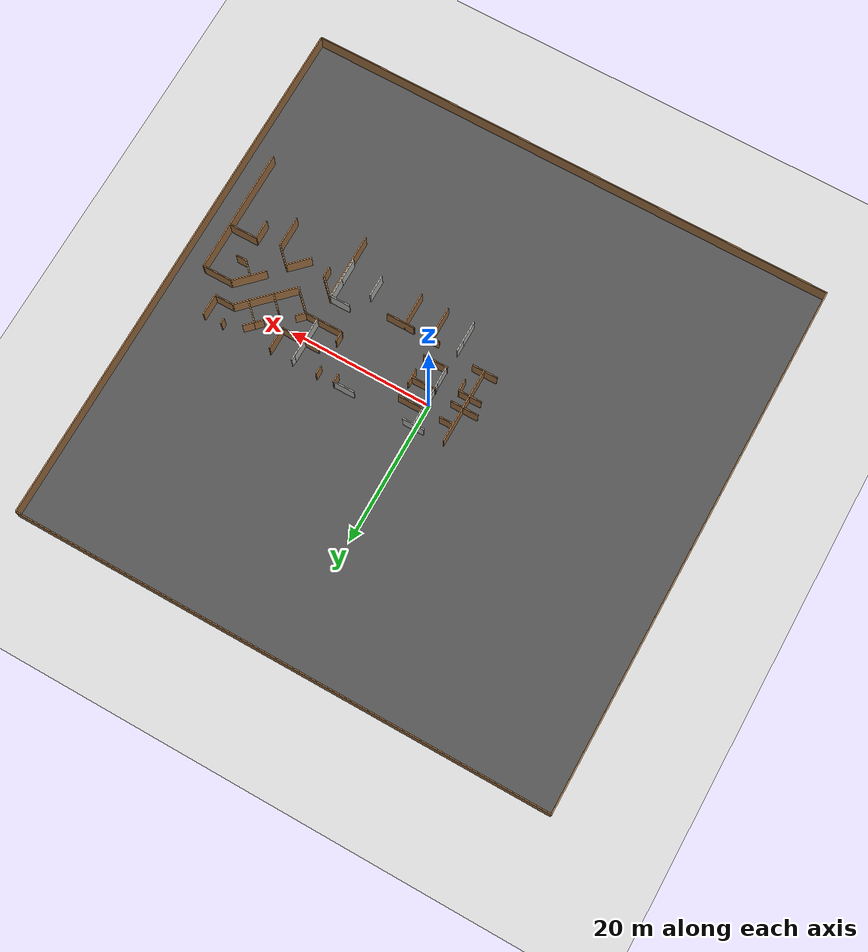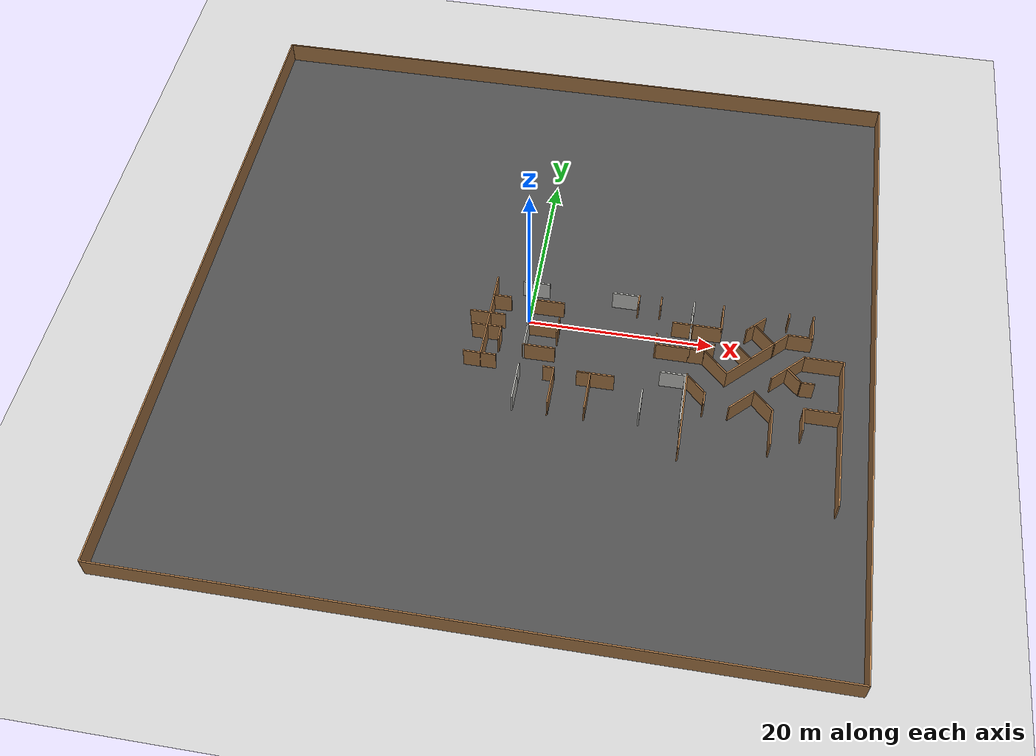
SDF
<sdf version="1.6">
 <world name="default">
  <model name="ground_plane">
   <static>1</static>
   <link name="link">
    <collision name="collision">
     <geometry><plane><normal>0 0 1</normal><size>100 100</size></plane></geometry>
     <surface><friction><ode><mu>100</mu><mu2>50</mu2></ode></friction></surface>
    </collision>
    <visual name="visual">
     <cast_shadows>0</cast_shadows>
     <geometry><plane><normal>0 0 1</normal><size>100 100</size></plane></geometry>
     <material>
      <script><uri>file://media/materials/scripts/gazebo.material</uri><name>Gazebo/Grey</name></script>
     </material>
    </visual>
   </link>
  </model>
  <model name="map_frame">
   <link name="Wall_0">
    <collision name="Wall_0_Collision">
     <geometry><box><size>74.05 0.15 2.5</size></box></geometry>
     <pose>0 0 1.25 0 -0 0</pose>
    </collision>
    <visual name="Wall_0_Visual">
     <pose>0 0 1.25 0 -0 0</pose>
     <geometry><box><size>74.05 0.15 2.5</size></box></geometry>
     <material>
      <script><uri>file://media/materials/scripts/gazebo.material</uri><name>Gazebo/Wood</name></script>
      <ambient>1 1 1 1</ambient>
     </material>
    </visual>
    <pose>0 37 0 0 -0 0</pose>
   </link>
   <link name="Wall_1">
    <collision name="Wall_1_Collision">
     <geometry><box><size>74.05 0.15 2.5</size></box></geometry>
     <pose>0 0 1.25 0 -0 0</pose>
    </collision>
    <visual name="Wall_1_Visual">
     <pose>0 0 1.25 0 -0 0</pose>
     <geometry><box><size>74.05 0.15 2.5</size></box></geometry>
     <material>
      <script><uri>file://media/materials/scripts/gazebo.material</uri><name>Gazebo/Wood</name></script>
      <ambient>1 1 1 1</ambient>
     </material>
    </visual>
    <pose>37 0 0 0 0 -1.5708</pose>
   </link>
   <link name="Wall_2">
    <collision name="Wall_2_Collision">
     <geometry><box><size>74.05 0.15 2.5</size></box></geometry>
     <pose>0 0 1.25 0 -0 0</pose>
    </collision>
    <visual name="Wall_2_Visual">
     <pose>0 0 1.25 0 -0 0</pose>
     <geometry><box><size>74.05 0.15 2.5</size></box></geometry>
     <material>
      <script><uri>file://media/materials/scripts/gazebo.material</uri><name>Gazebo/Wood</name></script>
      <ambient>1 1 1 1</ambient>
     </material>
    </visual>
    <pose>0 -37 0 0 -0 3.14159</pose>
   </link>
   <link name="Wall_3">
    <collision name="Wall_3_Collision">
     <geometry><box><size>74.05 0.15 2.5</size></box></geometry>
     <pose>0 0 1.25 0 -0 0</pose>
    </collision>
    <visual name="Wall_3_Visual">
     <pose>0 0 1.25 0 -0 0</pose>
     <geometry><box><size>74.05 0.15 2.5</size></box></geometry>
     <material>
      <script><uri>file://media/materials/scripts/gazebo.material</uri><name>Gazebo/Wood</name></script>
      <ambient>1 1 1 1</ambient>
     </material>
    </visual>
    <pose>-37 0 0 0 -0 1.5708</pose>
   </link>
   <static>1</static>
  </model>
  <model name="asphalt_plane">
   <static>1</static>
   <link name="link">
    <collision name="collision"><geometry><box><size>74 74 0.1</size></box></geometry></collision>
    <visual name="visual">
     <cast_shadows>0</cast_shadows>
     <geometry><box><size>74 74 0.1</size></box></geometry>
     <material>
      <script>
       <uri>model://asphalt_plane/materials/scripts</uri>
       <uri>model://asphalt_plane/materials/textures</uri>
       <name>vrc/asphalt</name>
      </script>
     </material>
    </visual>
   </link>
  </model>
  <model name="concrete_wall_6_clone_1">
   <pose>16.3445 -5.99981 0 0 -0 1.57079</pose>
   <link name="Wall_0">
    <collision name="Wall_0_Collision">
     <geometry><box><size>3 0.15 2.5</size></box></geometry>
     <pose>0 0 1.25 0 -0 0</pose>
    </collision>
    <visual name="Wall_0_Visual">
     <pose>0 0 1.25 0 -0 0</pose>
     <geometry><box><size>3 0.15 2.5</size></box></geometry>
     <material>
      <script><uri>file://media/materials/scripts/gazebo.material</uri><name>Gazebo/CeilingTiled</name></script>
      <ambient>1 1 1 1</ambient>
     </material>
     <meta><layer>0</layer></meta>
    </visual>
    <pose>0 0 0 0 -0 1.5708</pose>
   </link>
   <static>1</static>
  </model>
  <model name="concrete_wall_7">
   <pose>13.2693 -9.97942 0 0 -0 0</pose>
   <link name="Wall_0">
    <collision name="Wall_0_Collision">
     <geometry><box><size>3 0.15 2.5</size></box></geometry>
     <pose>0 0 1.25 0 -0 0</pose>
    </collision>
    <visual name="Wall_0_Visual">
     <pose>0 0 1.25 0 -0 0</pose>
     <geometry><box><size>3 0.15 2.5</size></box></geometry>
     <material>
      <script><uri>file://media/materials/scripts/gazebo.material</uri><name>Gazebo/CeilingTiled</name></script>
      <ambient>1 1 1 1</ambient>
     </material>
     <meta><layer>0</layer></meta>
    </visual>
    <pose>0 0 0 0 -0 1.5708</pose>
   </link>
   <static>1</static>
  </model>
  <model name="concrete_wall_8">
   <pose>17.5032 -10.1408 0 0 -0 0</pose>
   <link name="Wall_0">
    <collision name="Wall_0_Collision">
     <geometry><box><size>3 0.15 2.5</size></box></geometry>
     <pose>0 0 1.25 0 -0 0</pose>
    </collision>
    <visual name="Wall_0_Visual">
     <pose>0 0 1.25 0 -0 0</pose>
     <geometry><box><size>3 0.15 2.5</size></box></geometry>
     <material>
      <script><uri>file://media/materials/scripts/gazebo.material</uri><name>Gazebo/CeilingTiled</name></script>
      <ambient>1 1 1 1</ambient>
     </material>
     <meta><layer>0</layer></meta>
    </visual>
    <pose>0 0 0 0 -0 1.5708</pose>
   </link>
   <static>1</static>
  </model>
  <model name="concrete_wall_9">
   <pose>17.5144 -7.46989 0 0 -0 0</pose>
   <link name="Wall_0">
    <collision name="Wall_0_Collision">
     <geometry><box><size>3 0.15 2.5</size></box></geometry>
     <pose>0 0 1.25 0 -0 0</pose>
    </collision>
    <visual name="Wall_0_Visual">
     <pose>0 0 1.25 0 -0 0</pose>
     <geometry><box><size>3 0.15 2.5</size></box></geometry>
     <material>
      <script><uri>file://media/materials/scripts/gazebo.material</uri><name>Gazebo/CeilingTiled</name></script>
      <ambient>1 1 1 1</ambient>
     </material>
     <meta><layer>0</layer></meta>
    </visual>
    <pose>0 0 0 0 -0 1.5708</pose>
   </link>
   <static>1</static>
  </model>
  <model name="willowgarage_v1_1">
   <pose>-14.3408 -3.86286 0 0 -0 0</pose>
   <link name="Wall_203">
    <collision name="Wall_203_Collision">
     <geometry><box><size>1.25 0.15 2.5</size></box></geometry>
     <pose>0 0 1.25 0 -0 0</pose>
    </collision>
    <visual name="Wall_203_Visual">
     <pose>0 0 1.25 0 -0 0</pose>
     <geometry><box><size>1.25 0.15 2.5</size></box></geometry>
     <material>
      <script><uri>file://media/materials/scripts/gazebo.material</uri><name>Gazebo/Wood</name></script>
      <ambient>1 1 1 1</ambient>
     </material>
     <meta><layer>0</layer></meta>
    </visual>
    <pose>28.3156 7.16139 0 0 0 -1.5708</pose>
   </link>
   <link name="Wall_205">
    <collision name="Wall_205_Collision">
     <geometry><box><size>3.75 0.15 2.5</size></box></geometry>
     <pose>0 0 1.25 0 -0 0</pose>
    </collision>
    <visual name="Wall_205_Visual">
     <pose>0 0 1.25 0 -0 0</pose>
     <geometry><box><size>3.75 0.15 2.5</size></box></geometry>
     <material>
      <script><uri>file://media/materials/scripts/gazebo.material</uri><name>Gazebo/Wood</name></script>
      <ambient>1 1 1 1</ambient>
     </material>
     <meta><layer>0</layer></meta>
    </visual>
    <pose>30.1156 1.36139 0 0 -0 3.14159</pose>
   </link>
   <link name="Wall_206">
    <collision name="Wall_206_Collision">
     <geometry><box><size>1.5 0.15 2.5</size></box></geometry>
     <pose>0 0 1.25 0 -0 0</pose>
    </collision>
    <visual name="Wall_206_Visual">
     <pose>0 0 1.25 0 -0 0</pose>
     <geometry><box><size>1.5 0.15 2.5</size></box></geometry>
     <material>
      <script><uri>file://media/materials/scripts/gazebo.material</uri><name>Gazebo/Wood</name></script>
      <ambient>1 1 1 1</ambient>
     </material>
     <meta><layer>0</layer></meta>
    </visual>
    <pose>28.3156 2.03639 0 0 -0 1.5708</pose>
   </link>
   <link name="Wall_208">
    <collision name="Wall_208_Collision">
     <geometry><box><size>2.25 0.15 2.5</size></box></geometry>
     <pose>0 0 1.25 0 -0 0</pose>
    </collision>
    <visual name="Wall_208_Visual">
     <pose>0 0 1.25 0 -0 0</pose>
     <geometry><box><size>2.25 0.15 2.5</size></box></geometry>
     <material>
      <script><uri>file://media/materials/scripts/gazebo.material</uri><name>Gazebo/Wood</name></script>
      <ambient>1 1 1 1</ambient>
     </material>
     <meta><layer>0</layer></meta>
    </visual>
    <pose>30.9367 4.55145 0 0 -0 3.14159</pose>
   </link>
   <link name="Wall_210">
    <collision name="Wall_210_Collision">
     <geometry><box><size>1.25 0.15 2.5</size></box></geometry>
     <pose>0 0 1.25 0 -0 0</pose>
    </collision>
    <visual name="Wall_210_Visual">
     <pose>0 0 1.25 0 -0 0</pose>
     <geometry><box><size>1.25 0.15 2.5</size></box></geometry>
     <material>
      <script><uri>file://media/materials/scripts/gazebo.material</uri><name>Gazebo/Wood</name></script>
      <ambient>1 1 1 1</ambient>
     </material>
     <meta><layer>0</layer></meta>
    </visual>
    <pose>25.8955 7.01631 0 0 0 -1.5708</pose>
   </link>
   <link name="Wall_223">
    <collision name="Wall_223_Collision">
     <geometry><box><size>3.5 0.15 2.5</size></box></geometry>
     <pose>0 0 1.25 0 -0 0</pose>
    </collision>
    <visual name="Wall_223_Visual">
     <pose>0 0 1.25 0 -0 0</pose>
     <geometry><box><size>3.5 0.15 2.5</size></box></geometry>
     <material>
      <script><uri>file://media/materials/scripts/gazebo.material</uri><name>Gazebo/Wood</name></script>
      <ambient>1 1 1 1</ambient>
     </material>
     <meta><layer>0</layer></meta>
    </visual>
    <pose>16.1263 -0.986061 0 0 -0 0</pose>
   </link>
   <link name="Wall_225">
    <collision name="Wall_225_Collision">
     <geometry><box><size>3.5 0.15 2.5</size></box></geometry>
     <pose>0 0 1.25 0 -0 0</pose>
    </collision>
    <visual name="Wall_225_Visual">
     <pose>0 0 1.25 0 -0 0</pose>
     <geometry><box><size>3.5 0.15 2.5</size></box></geometry>
     <material>
      <script><uri>file://media/materials/scripts/gazebo.material</uri><name>Gazebo/Wood</name></script>
      <ambient>1 1 1 1</ambient>
     </material>
     <meta><layer>0</layer></meta>
    </visual>
    <pose>16.2246 5.15959 0 0 -0 0</pose>
   </link>
   <link name="Wall_227">
    <collision name="Wall_227_Collision">
     <geometry><box><size>3.5 0.15 2.5</size></box></geometry>
     <pose>0 0 1.25 0 -0 0</pose>
    </collision>
    <visual name="Wall_227_Visual">
     <pose>0 0 1.25 0 -0 0</pose>
     <geometry><box><size>3.5 0.15 2.5</size></box></geometry>
     <material>
      <script><uri>file://media/materials/scripts/gazebo.material</uri><name>Gazebo/Wood</name></script>
      <ambient>1 1 1 1</ambient>
     </material>
     <meta><layer>0</layer></meta>
    </visual>
    <pose>16.0641 2.21696 0 0 -0 0</pose>
   </link>
   <link name="Wall_228">
    <collision name="Wall_228_Collision">
     <geometry><box><size>1 0.15 2.5</size></box></geometry>
     <pose>0 0 1.25 0 -0 0</pose>
    </collision>
    <visual name="Wall_228_Visual">
     <pose>0 0 1.25 0 -0 0</pose>
     <geometry><box><size>1 0.15 2.5</size></box></geometry>
     <material>
      <script><uri>file://media/materials/scripts/gazebo.material</uri><name>Gazebo/Wood</name></script>
      <ambient>1 1 1 1</ambient>
     </material>
     <meta><layer>0</layer></meta>
    </visual>
    <pose>17.7391 2.64196 0 0 -0 1.5708</pose>
   </link>
   <link name="Wall_229">
    <collision name="Wall_229_Collision">
     <geometry><box><size>2 0.15 2.5</size></box></geometry>
     <pose>0 0 1.25 0 -0 0</pose>
    </collision>
    <visual name="Wall_229_Visual">
     <pose>0 0 1.25 0 -0 0</pose>
     <geometry><box><size>2 0.15 2.5</size></box></geometry>
     <material>
      <script><uri>file://media/materials/scripts/gazebo.material</uri><name>Gazebo/Wood</name></script>
      <ambient>1 1 1 1</ambient>
     </material>
     <meta><layer>0</layer></meta>
    </visual>
    <pose>17.7391 2.14196 0 0 0 -1.5708</pose>
   </link>
   <link name="Wall_24">
    <collision name="Wall_24_Collision">
     <geometry><box><size>9.25 0.15 2.5</size></box></geometry>
     <pose>0 0 1.25 0 -0 0</pose>
    </collision>
    <visual name="Wall_24_Visual">
     <pose>0 0 1.25 0 -0 0</pose>
     <geometry><box><size>9.25 0.15 2.5</size></box></geometry>
     <material>
      <script><uri>file://media/materials/scripts/gazebo.material</uri><name>Gazebo/Wood</name></script>
      <ambient>1 1 1 1</ambient>
     </material>
     <meta><layer>0</layer></meta>
    </visual>
    <pose>32.0092 -6.57054 0 0 0 -1.5708</pose>
   </link>
   <link name="Wall_311">
    <collision name="Wall_311_Collision">
     <geometry><box><size>3.5 0.15 2.5</size></box></geometry>
     <pose>0 0 1.25 0 -0 0</pose>
    </collision>
    <visual name="Wall_311_Visual">
     <pose>0 0 1.25 0 -0 0</pose>
     <geometry><box><size>3.5 0.15 2.5</size></box></geometry>
     <material>
      <script><uri>file://media/materials/scripts/gazebo.material</uri><name>Gazebo/Wood</name></script>
      <ambient>1 1 1 1</ambient>
     </material>
     <meta><layer>0</layer></meta>
    </visual>
    <pose>10.0901 -2.83065 0 0 -0 3.14159</pose>
   </link>
   <link name="Wall_313">
    <collision name="Wall_313_Collision">
     <geometry><box><size>10.5 0.15 2.5</size></box></geometry>
     <pose>0 0 1.25 0 -0 0</pose>
    </collision>
    <visual name="Wall_313_Visual">
     <pose>0 0 1.25 0 -0 0</pose>
     <geometry><box><size>10.5 0.15 2.5</size></box></geometry>
     <material>
      <script><uri>file://media/materials/scripts/gazebo.material</uri><name>Gazebo/Wood</name></script>
      <ambient>1 1 1 1</ambient>
     </material>
     <meta><layer>0</layer></meta>
    </visual>
    <pose>10.2019 2.34435 0 0 -0 1.5708</pose>
   </link>
   <link name="Wall_321">
    <collision name="Wall_321_Collision">
     <geometry><box><size>1.75 0.15 2.5</size></box></geometry>
     <pose>0 0 1.25 0 -0 0</pose>
    </collision>
    <visual name="Wall_321_Visual">
     <pose>0 0 1.25 0 -0 0</pose>
     <geometry><box><size>1.75 0.15 2.5</size></box></geometry>
     <material>
      <script><uri>file://media/materials/scripts/gazebo.material</uri><name>Gazebo/Wood</name></script>
      <ambient>1 1 1 1</ambient>
     </material>
     <meta><layer>0</layer></meta>
    </visual>
    <pose>11.7228 0.119011 0 0 -0 1.5708</pose>
   </link>
   <link name="Wall_322">
    <collision name="Wall_322_Collision">
     <geometry><box><size>3.25 0.15 2.5</size></box></geometry>
     <pose>0 0 1.25 0 -0 0</pose>
    </collision>
    <visual name="Wall_322_Visual">
     <pose>0 0 1.25 0 -0 0</pose>
     <geometry><box><size>3.25 0.15 2.5</size></box></geometry>
     <material>
      <script><uri>file://media/materials/scripts/gazebo.material</uri><name>Gazebo/Wood</name></script>
      <ambient>1 1 1 1</ambient>
     </material>
     <meta><layer>0</layer></meta>
    </visual>
    <pose>10.1728 0.919011 0 0 -0 3.14159</pose>
   </link>
   <link name="Wall_328">
    <collision name="Wall_328_Collision">
     <geometry><box><size>2.25 0.15 2.5</size></box></geometry>
     <pose>0 0 1.25 0 -0 0</pose>
    </collision>
    <visual name="Wall_328_Visual">
     <pose>0 0 1.25 0 -0 0</pose>
     <geometry><box><size>2.25 0.15 2.5</size></box></geometry>
     <material>
      <script><uri>file://media/materials/scripts/gazebo.material</uri><name>Gazebo/Wood</name></script>
      <ambient>1 1 1 1</ambient>
     </material>
     <meta><layer>0</layer></meta>
    </visual>
    <pose>9.18402 2.62221 0 0 -0 3.14159</pose>
   </link>
   <link name="Wall_330">
    <collision name="Wall_330_Collision">
     <geometry><box><size>2 0.15 2.5</size></box></geometry>
     <pose>0 0 1.25 0 -0 0</pose>
    </collision>
    <visual name="Wall_330_Visual">
     <pose>0 0 1.25 0 -0 0</pose>
     <geometry><box><size>2 0.15 2.5</size></box></geometry>
     <material>
      <script><uri>file://media/materials/scripts/gazebo.material</uri><name>Gazebo/Wood</name></script>
      <ambient>1 1 1 1</ambient>
     </material>
     <meta><layer>0</layer></meta>
    </visual>
    <pose>11.159 5.08798 0 0 -0 0</pose>
   </link>
   <link name="Wall_332">
    <collision name="Wall_332_Collision">
     <geometry><box><size>1.75 0.15 2.5</size></box></geometry>
     <pose>0 0 1.25 0 -0 0</pose>
    </collision>
    <visual name="Wall_332_Visual">
     <pose>0 0 1.25 0 -0 0</pose>
     <geometry><box><size>1.75 0.15 2.5</size></box></geometry>
     <material>
      <script><uri>file://media/materials/scripts/gazebo.material</uri><name>Gazebo/Wood</name></script>
      <ambient>1 1 1 1</ambient>
     </material>
     <meta><layer>0</layer></meta>
    </visual>
    <pose>11.034 2.62221 0 0 -0 0</pose>
   </link>
   <link name="Wall_343">
    <collision name="Wall_343_Collision">
     <geometry><box><size>17.5 0.15 2.5</size></box></geometry>
     <pose>0 0 1.25 0 -0 0</pose>
    </collision>
    <visual name="Wall_343_Visual">
     <pose>0 0 1.25 0 -0 0</pose>
     <geometry><box><size>17.5 0.15 2.5</size></box></geometry>
     <material>
      <script><uri>file://media/materials/scripts/gazebo.material</uri><name>Gazebo/Wood</name></script>
      <ambient>1 1 1 1</ambient>
     </material>
     <meta><layer>0</layer></meta>
    </visual>
    <pose>48.1101 -6.45706 0 0 0 -1.5708</pose>
   </link>
   <link name="Wall_350">
    <collision name="Wall_350_Collision">
     <geometry><box><size>4.25 0.15 2.5</size></box></geometry>
     <pose>0 0 1.25 0 -0 0</pose>
    </collision>
    <visual name="Wall_350_Visual">
     <pose>0 0 1.25 0 -0 0</pose>
     <geometry><box><size>4.25 0.15 2.5</size></box></geometry>
     <material>
      <script><uri>file://media/materials/scripts/gazebo.material</uri><name>Gazebo/Wood</name></script>
      <ambient>1 1 1 1</ambient>
     </material>
     <meta><layer>0</layer></meta>
    </visual>
    <pose>46.0601 2.21794 0 0 -0 3.14159</pose>
   </link>
   <link name="Wall_351">
    <collision name="Wall_351_Collision">
     <geometry><box><size>4.75 0.15 2.5</size></box></geometry>
     <pose>0 0 1.25 0 -0 0</pose>
    </collision>
    <visual name="Wall_351_Visual">
     <pose>0 0 1.25 0 -0 0</pose>
     <geometry><box><size>4.75 0.15 2.5</size></box></geometry>
     <material>
      <script><uri>file://media/materials/scripts/gazebo.material</uri><name>Gazebo/Wood</name></script>
      <ambient>1 1 1 1</ambient>
     </material>
     <meta><layer>0</layer></meta>
    </visual>
    <pose>42.3838 0.591594 0 0 0 -2.35619</pose>
   </link>
   <link name="Wall_354">
    <collision name="Wall_354_Collision">
     <geometry><box><size>3.5 0.15 2.5</size></box></geometry>
     <pose>0 0 1.25 0 -0 0</pose>
    </collision>
    <visual name="Wall_354_Visual">
     <pose>0 0 1.25 0 -0 0</pose>
     <geometry><box><size>3.5 0.15 2.5</size></box></geometry>
     <material>
      <script><uri>file://media/materials/scripts/gazebo.material</uri><name>Gazebo/Wood</name></script>
      <ambient>1 1 1 1</ambient>
     </material>
     <meta><layer>0</layer></meta>
    </visual>
    <pose>37.8607 -4.19295 0 0 0 -2.35619</pose>
   </link>
   <link name="Wall_35412">
    <collision name="Wall_35412_Collision">
     <geometry><box><size>3.5 0.15 2.5</size></box></geometry>
     <pose>0 0 1.25 0 -0 0</pose>
    </collision>
    <visual name="Wall_35412_Visual">
     <pose>0 0 1.25 0 -0 0</pose>
     <geometry><box><size>3.5 0.15 2.5</size></box></geometry>
     <material>
      <script><uri>file://media/materials/scripts/gazebo.material</uri><name>Gazebo/Wood</name></script>
      <ambient>1 1 1 1</ambient>
     </material>
     <meta><layer>0</layer></meta>
    </visual>
    <pose>37.8607 -4.19295 0 0 0 -2.35619</pose>
   </link>
   <link name="Wall_35411">
    <collision name="Wall_35411_Collision">
     <geometry><box><size>3.5 0.15 2.5</size></box></geometry>
     <pose>0 0 1.25 0 -0 0</pose>
    </collision>
    <visual name="Wall_35411_Visual">
     <pose>0 0 1.25 0 -0 0</pose>
     <geometry><box><size>3.5 0.15 2.5</size></box></geometry>
     <material>
      <script><uri>file://media/materials/scripts/gazebo.material</uri><name>Gazebo/Wood</name></script>
      <ambient>1 1 1 1</ambient>
     </material>
     <meta><layer>0</layer></meta>
    </visual>
    <pose>37.8607 -4.19295 0 0 0 -2.35619</pose>
   </link>
   <link name="Wall_361">
    <collision name="Wall_361_Collision">
     <geometry><box><size>2.25 0.15 2.5</size></box></geometry>
     <pose>0 0 1.25 0 -0 0</pose>
    </collision>
    <visual name="Wall_361_Visual">
     <pose>0 0 1.25 0 -0 0</pose>
     <geometry><box><size>2.25 0.15 2.5</size></box></geometry>
     <material>
      <script><uri>file://media/materials/scripts/gazebo.material</uri><name>Gazebo/Wood</name></script>
      <ambient>1 1 1 1</ambient>
     </material>
     <meta><layer>0</layer></meta>
    </visual>
    <pose>43.0424 -0.333442 0 0 0 -0.785398</pose>
   </link>
   <link name="Wall_362">
    <collision name="Wall_362_Collision">
     <geometry><box><size>1.5 0.15 2.5</size></box></geometry>
     <pose>0 0 1.25 0 -0 0</pose>
    </collision>
    <visual name="Wall_362_Visual">
     <pose>0 0 1.25 0 -0 0</pose>
     <geometry><box><size>1.5 0.15 2.5</size></box></geometry>
     <material>
      <script><uri>file://media/materials/scripts/gazebo.material</uri><name>Gazebo/Wood</name></script>
      <ambient>1 1 1 1</ambient>
     </material>
     <meta><layer>0</layer></meta>
    </visual>
    <pose>44.4599 -1.0759 0 0 -0 0</pose>
   </link>
   <link name="Wall_364">
    <collision name="Wall_364_Collision">
     <geometry><box><size>4 0.15 2.5</size></box></geometry>
     <pose>0 0 1.25 0 -0 0</pose>
    </collision>
    <visual name="Wall_364_Visual">
     <pose>0 0 1.25 0 -0 0</pose>
     <geometry><box><size>4 0.15 2.5</size></box></geometry>
     <material>
      <script><uri>file://media/materials/scripts/gazebo.material</uri><name>Gazebo/Wood</name></script>
      <ambient>1 1 1 1</ambient>
     </material>
     <meta><layer>0</layer></meta>
    </visual>
    <pose>46.1523 -4.31048 0 0 -0 3.14159</pose>
   </link>
   <link name="Wall_365">
    <collision name="Wall_365_Collision">
     <geometry><box><size>2.75 0.15 2.5</size></box></geometry>
     <pose>0 0 1.25 0 -0 0</pose>
    </collision>
    <visual name="Wall_365_Visual">
     <pose>0 0 1.25 0 -0 0</pose>
     <geometry><box><size>2.75 0.15 2.5</size></box></geometry>
     <material>
      <script><uri>file://media/materials/scripts/gazebo.material</uri><name>Gazebo/Wood</name></script>
      <ambient>1 1 1 1</ambient>
     </material>
     <meta><layer>0</layer></meta>
    </visual>
    <pose>44.2273 -5.61048 0 0 0 -1.5708</pose>
   </link>
   <link name="Wall_373">
    <collision name="Wall_373_Collision">
     <geometry><box><size>3 0.15 2.5</size></box></geometry>
     <pose>0 0 1.25 0 -0 0</pose>
    </collision>
    <visual name="Wall_373_Visual">
     <pose>0 0 1.25 0 -0 0</pose>
     <geometry><box><size>3 0.15 2.5</size></box></geometry>
     <material>
      <script><uri>file://media/materials/scripts/gazebo.material</uri><name>Gazebo/Wood</name></script>
      <ambient>1 1 1 1</ambient>
     </material>
     <meta><layer>0</layer></meta>
    </visual>
    <pose>40.0527 -4.01617 0 0 0 -0.785398</pose>
   </link>
   <link name="Wall_374">
    <collision name="Wall_374_Collision">
     <geometry><box><size>4.25 0.15 2.5</size></box></geometry>
     <pose>0 0 1.25 0 -0 0</pose>
    </collision>
    <visual name="Wall_374_Visual">
     <pose>0 0 1.25 0 -0 0</pose>
     <geometry><box><size>4.25 0.15 2.5</size></box></geometry>
     <material>
      <script><uri>file://media/materials/scripts/gazebo.material</uri><name>Gazebo/Wood</name></script>
      <ambient>1 1 1 1</ambient>
     </material>
     <meta><layer>0</layer></meta>
    </visual>
    <pose>41.0604 -7.0738 0 0 0 -1.5708</pose>
   </link>
   <link name="Wall_37312">
    <collision name="Wall_37312_Collision">
     <geometry><box><size>3 0.15 2.5</size></box></geometry>
     <pose>0 0 1.25 0 -0 0</pose>
    </collision>
    <visual name="Wall_37312_Visual">
     <pose>0 0 1.25 0 -0 0</pose>
     <geometry><box><size>3 0.15 2.5</size></box></geometry>
     <material>
      <script><uri>file://media/materials/scripts/gazebo.material</uri><name>Gazebo/Wood</name></script>
      <ambient>1 1 1 1</ambient>
     </material>
     <meta><layer>0</layer></meta>
    </visual>
    <pose>40.0527 -4.01617 0 0 0 -0.785398</pose>
   </link>
   <link name="Wall_37412">
    <collision name="Wall_37412_Collision">
     <geometry><box><size>4.25 0.15 2.5</size></box></geometry>
     <pose>0 0 1.25 0 -0 0</pose>
    </collision>
    <visual name="Wall_37412_Visual">
     <pose>0 0 1.25 0 -0 0</pose>
     <geometry><box><size>4.25 0.15 2.5</size></box></geometry>
     <material>
      <script><uri>file://media/materials/scripts/gazebo.material</uri><name>Gazebo/Wood</name></script>
      <ambient>1 1 1 1</ambient>
     </material>
     <meta><layer>0</layer></meta>
    </visual>
    <pose>41.0604 -7.0738 0 0 0 -1.5708</pose>
   </link>
   <link name="Wall_37311">
    <collision name="Wall_37311_Collision">
     <geometry><box><size>3 0.15 2.5</size></box></geometry>
     <pose>0 0 1.25 0 -0 0</pose>
    </collision>
    <visual name="Wall_37311_Visual">
     <pose>0 0 1.25 0 -0 0</pose>
     <geometry><box><size>3 0.15 2.5</size></box></geometry>
     <material>
      <script><uri>file://media/materials/scripts/gazebo.material</uri><name>Gazebo/Wood</name></script>
      <ambient>1 1 1 1</ambient>
     </material>
     <meta><layer>0</layer></meta>
    </visual>
    <pose>40.0527 -4.01617 0 0 0 -0.785398</pose>
   </link>
   <link name="Wall_37411">
    <collision name="Wall_37411_Collision">
     <geometry><box><size>4.25 0.15 2.5</size></box></geometry>
     <pose>0 0 1.25 0 -0 0</pose>
    </collision>
    <visual name="Wall_37411_Visual">
     <pose>0 0 1.25 0 -0 0</pose>
     <geometry><box><size>4.25 0.15 2.5</size></box></geometry>
     <material>
      <script><uri>file://media/materials/scripts/gazebo.material</uri><name>Gazebo/Wood</name></script>
      <ambient>1 1 1 1</ambient>
     </material>
     <meta><layer>0</layer></meta>
    </visual>
    <pose>41.0604 -7.0738 0 0 0 -1.5708</pose>
   </link>
   <link name="Wall_380">
    <collision name="Wall_380_Collision">
     <geometry><box><size>1.75 0.15 2.5</size></box></geometry>
     <pose>0 0 1.25 0 -0 0</pose>
    </collision>
    <visual name="Wall_380_Visual">
     <pose>0 0 1.25 0 -0 0</pose>
     <geometry><box><size>1.75 0.15 2.5</size></box></geometry>
     <material>
      <script><uri>file://media/materials/scripts/gazebo.material</uri><name>Gazebo/Wood</name></script>
      <ambient>1 1 1 1</ambient>
     </material>
     <meta><layer>0</layer></meta>
    </visual>
    <pose>32.7157 1.36139 0 0 -0 0</pose>
   </link>
   <link name="Wall_381">
    <collision name="Wall_381_Collision">
     <geometry><box><size>3.75 0.15 2.5</size></box></geometry>
     <pose>0 0 1.25 0 -0 0</pose>
    </collision>
    <visual name="Wall_381_Visual">
     <pose>0 0 1.25 0 -0 0</pose>
     <geometry><box><size>3.75 0.15 2.5</size></box></geometry>
     <material>
      <script><uri>file://media/materials/scripts/gazebo.material</uri><name>Gazebo/Wood</name></script>
      <ambient>1 1 1 1</ambient>
     </material>
     <meta><layer>0</layer></meta>
    </visual>
    <pose>34.7884 0.088597 0 0 0 -0.785398</pose>
   </link>
   <link name="Wall_382">
    <collision name="Wall_382_Collision">
     <geometry><box><size>8.75 0.15 2.5</size></box></geometry>
     <pose>0 0 1.25 0 -0 0</pose>
    </collision>
    <visual name="Wall_382_Visual">
     <pose>0 0 1.25 0 -0 0</pose>
     <geometry><box><size>8.75 0.15 2.5</size></box></geometry>
     <material>
      <script><uri>file://media/materials/scripts/gazebo.material</uri><name>Gazebo/Wood</name></script>
      <ambient>1 1 1 1</ambient>
     </material>
     <meta><layer>0</layer></meta>
    </visual>
    <pose>39.1018 1.85636 0 0 -0 0.785398</pose>
   </link>
   <link name="Wall_383">
    <collision name="Wall_383_Collision">
     <geometry><box><size>2.75 0.15 2.5</size></box></geometry>
     <pose>0 0 1.25 0 -0 0</pose>
    </collision>
    <visual name="Wall_383_Visual">
     <pose>0 0 1.25 0 -0 0</pose>
     <geometry><box><size>2.75 0.15 2.5</size></box></geometry>
     <material>
      <script><uri>file://media/materials/scripts/gazebo.material</uri><name>Gazebo/Wood</name></script>
      <ambient>1 1 1 1</ambient>
     </material>
     <meta><layer>0</layer></meta>
    </visual>
    <pose>43.4424 4.89692 0 0 -0 0</pose>
   </link>
   <link name="Wall_384">
    <collision name="Wall_384_Collision">
     <geometry><box><size>3 0.15 2.5</size></box></geometry>
     <pose>0 0 1.25 0 -0 0</pose>
    </collision>
    <visual name="Wall_384_Visual">
     <pose>0 0 1.25 0 -0 0</pose>
     <geometry><box><size>3 0.15 2.5</size></box></geometry>
     <material>
      <script><uri>file://media/materials/scripts/gazebo.material</uri><name>Gazebo/Wood</name></script>
      <ambient>1 1 1 1</ambient>
     </material>
     <meta><layer>0</layer></meta>
    </visual>
    <pose>44.7424 6.32192 0 0 -0 1.5708</pose>
   </link>
   <link name="Wall_386">
    <collision name="Wall_386_Collision">
     <geometry><box><size>0.75 0.15 2.5</size></box></geometry>
     <pose>0 0 1.25 0 -0 0</pose>
    </collision>
    <visual name="Wall_386_Visual">
     <pose>0 0 1.25 0 -0 0</pose>
     <geometry><box><size>0.75 0.15 2.5</size></box></geometry>
     <material>
      <script><uri>file://media/materials/scripts/gazebo.material</uri><name>Gazebo/Wood</name></script>
      <ambient>1 1 1 1</ambient>
     </material>
     <meta><layer>0</layer></meta>
    </visual>
    <pose>42.1424 7.44692 0 0 0 -1.5708</pose>
   </link>
   <link name="Wall_388">
    <collision name="Wall_388_Collision">
     <geometry><box><size>3 0.15 2.5</size></box></geometry>
     <pose>0 0 1.25 0 -0 0</pose>
    </collision>
    <visual name="Wall_388_Visual">
     <pose>0 0 1.25 0 -0 0</pose>
     <geometry><box><size>3 0.15 2.5</size></box></geometry>
     <material>
      <script><uri>file://media/materials/scripts/gazebo.material</uri><name>Gazebo/Wood</name></script>
      <ambient>1 1 1 1</ambient>
     </material>
     <meta><layer>0</layer></meta>
    </visual>
    <pose>33.0169 -3.02816 0 0 0 -0.785398</pose>
   </link>
   <link name="Wall_390">
    <collision name="Wall_390_Collision">
     <geometry><box><size>1.5 0.15 2.5</size></box></geometry>
     <pose>0 0 1.25 0 -0 0</pose>
    </collision>
    <visual name="Wall_390_Visual">
     <pose>0 0 1.25 0 -0 0</pose>
     <geometry><box><size>1.5 0.15 2.5</size></box></geometry>
     <material>
      <script><uri>file://media/materials/scripts/gazebo.material</uri><name>Gazebo/Wood</name></script>
      <ambient>1 1 1 1</ambient>
     </material>
     <meta><layer>0</layer></meta>
    </visual>
    <pose>34.0245 -4.71079 0 0 0 -1.5708</pose>
   </link>
   <link name="Wall_421">
    <collision name="Wall_421_Collision">
     <geometry><box><size>3.25 0.15 2.5</size></box></geometry>
     <pose>0 0 1.25 0 -0 0</pose>
    </collision>
    <visual name="Wall_421_Visual">
     <pose>0 0 1.25 0 -0 0</pose>
     <geometry><box><size>3.25 0.15 2.5</size></box></geometry>
     <material>
      <script><uri>file://media/materials/scripts/gazebo.material</uri><name>Gazebo/Wood</name></script>
      <ambient>1 1 1 1</ambient>
     </material>
     <meta><layer>0</layer></meta>
    </visual>
    <pose>33.5367 4.55145 0 0 -0 0</pose>
   </link>
   <link name="Wall_422">
    <collision name="Wall_422_Collision">
     <geometry><box><size>3.25 0.15 2.5</size></box></geometry>
     <pose>0 0 1.25 0 -0 0</pose>
    </collision>
    <visual name="Wall_422_Visual">
     <pose>0 0 1.25 0 -0 0</pose>
     <geometry><box><size>3.25 0.15 2.5</size></box></geometry>
     <material>
      <script><uri>file://media/materials/scripts/gazebo.material</uri><name>Gazebo/Wood</name></script>
      <ambient>1 1 1 1</ambient>
     </material>
     <meta><layer>0</layer></meta>
    </visual>
    <pose>35.0867 6.10145 0 0 -0 1.5708</pose>
   </link>
   <link name="Wall_425">
    <collision name="Wall_425_Collision">
     <geometry><box><size>2.5 0.15 2.5</size></box></geometry>
     <pose>0 0 1.25 0 -0 0</pose>
    </collision>
    <visual name="Wall_425_Visual">
     <pose>0 0 1.25 0 -0 0</pose>
     <geometry><box><size>2.5 0.15 2.5</size></box></geometry>
     <material>
      <script><uri>file://media/materials/scripts/gazebo.material</uri><name>Gazebo/Wood</name></script>
      <ambient>1 1 1 1</ambient>
     </material>
     <meta><layer>0</layer></meta>
    </visual>
    <pose>37.5395 1.98561 0 0 -0 2.35619</pose>
   </link>
   <link name="Wall_427">
    <collision name="Wall_427_Collision">
     <geometry><box><size>1.5 0.15 2.5</size></box></geometry>
     <pose>0 0 1.25 0 -0 0</pose>
    </collision>
    <visual name="Wall_427_Visual">
     <pose>0 0 1.25 0 -0 0</pose>
     <geometry><box><size>1.5 0.15 2.5</size></box></geometry>
     <material>
      <script><uri>file://media/materials/scripts/gazebo.material</uri><name>Gazebo/Wood</name></script>
      <ambient>1 1 1 1</ambient>
     </material>
     <meta><layer>0</layer></meta>
    </visual>
    <pose>33.9929 1.83869 0 0 -0 0.785398</pose>
   </link>
   <link name="Wall_431">
    <collision name="Wall_431_Collision">
     <geometry><box><size>3.25 0.15 2.5</size></box></geometry>
     <pose>0 0 1.25 0 -0 0</pose>
    </collision>
    <visual name="Wall_431_Visual">
     <pose>0 0 1.25 0 -0 0</pose>
     <geometry><box><size>3.25 0.15 2.5</size></box></geometry>
     <material>
      <script><uri>file://media/materials/scripts/gazebo.material</uri><name>Gazebo/Wood</name></script>
      <ambient>1 1 1 1</ambient>
     </material>
     <meta><layer>0</layer></meta>
    </visual>
    <pose>39.6341 4.52915 0 0 -0 2.35619</pose>
   </link>
   <link name="Wall_432">
    <collision name="Wall_432_Collision">
     <geometry><box><size>1.25 0.15 2.5</size></box></geometry>
     <pose>0 0 1.25 0 -0 0</pose>
    </collision>
    <visual name="Wall_432_Visual">
     <pose>0 0 1.25 0 -0 0</pose>
     <geometry><box><size>1.25 0.15 2.5</size></box></geometry>
     <material>
      <script><uri>file://media/materials/scripts/gazebo.material</uri><name>Gazebo/Wood</name></script>
      <ambient>1 1 1 1</ambient>
     </material>
     <meta><layer>0</layer></meta>
    </visual>
    <pose>38.1491 5.23626 0 0 0 -2.35619</pose>
   </link>
   <link name="Wall_433">
    <collision name="Wall_433_Collision">
     <geometry><box><size>2.75 0.15 2.5</size></box></geometry>
     <pose>0 0 1.25 0 -0 0</pose>
    </collision>
    <visual name="Wall_433_Visual">
     <pose>0 0 1.25 0 -0 0</pose>
     <geometry><box><size>2.75 0.15 2.5</size></box></geometry>
     <material>
      <script><uri>file://media/materials/scripts/gazebo.material</uri><name>Gazebo/Wood</name></script>
      <ambient>1 1 1 1</ambient>
     </material>
     <meta><layer>0</layer></meta>
    </visual>
    <pose>38.6795 5.76659 0 0 -0 0.785398</pose>
   </link>
   <link name="Wall_85">
    <collision name="Wall_85_Collision">
     <geometry><box><size>4.5 0.15 2.5</size></box></geometry>
     <pose>0 0 1.25 0 -0 0</pose>
    </collision>
    <visual name="Wall_85_Visual">
     <pose>0 0 1.25 0 -0 0</pose>
     <geometry><box><size>4.5 0.15 2.5</size></box></geometry>
     <material>
      <script><uri>file://media/materials/scripts/gazebo.material</uri><name>Gazebo/Wood</name></script>
      <ambient>1 1 1 1</ambient>
     </material>
     <meta><layer>0</layer></meta>
    </visual>
    <pose>18.1288 -5.66299 0 0 -0 1.5708</pose>
   </link>
   <link name="Wall_86">
    <collision name="Wall_86_Collision">
     <geometry><box><size>1.25 0.15 2.5</size></box></geometry>
     <pose>0 0 1.25 0 -0 0</pose>
    </collision>
    <visual name="Wall_86_Visual">
     <pose>0 0 1.25 0 -0 0</pose>
     <geometry><box><size>1.25 0.15 2.5</size></box></geometry>
     <material>
      <script><uri>file://media/materials/scripts/gazebo.material</uri><name>Gazebo/Wood</name></script>
      <ambient>1 1 1 1</ambient>
     </material>
     <meta><layer>0</layer></meta>
    </visual>
    <pose>17.5788 -3.488 0 0 -0 3.14159</pose>
   </link>
   <link name="Wall_88">
    <collision name="Wall_88_Collision">
     <geometry><box><size>4.5 0.15 2.5</size></box></geometry>
     <pose>0 0 1.25 0 -0 0</pose>
    </collision>
    <visual name="Wall_88_Visual">
     <pose>0 0 1.25 0 -0 0</pose>
     <geometry><box><size>4.5 0.15 2.5</size></box></geometry>
     <material>
      <script><uri>file://media/materials/scripts/gazebo.material</uri><name>Gazebo/Wood</name></script>
      <ambient>1 1 1 1</ambient>
     </material>
     <meta><layer>0</layer></meta>
    </visual>
    <pose>21.981 -5.7165 0 0 -0 1.5708</pose>
   </link>
   <link name="Wall_89">
    <collision name="Wall_89_Collision">
     <geometry><box><size>1.5 0.15 2.5</size></box></geometry>
     <pose>0 0 1.25 0 -0 0</pose>
    </collision>
    <visual name="Wall_89_Visual">
     <pose>0 0 1.25 0 -0 0</pose>
     <geometry><box><size>1.5 0.15 2.5</size></box></geometry>
     <material>
      <script><uri>file://media/materials/scripts/gazebo.material</uri><name>Gazebo/Wood</name></script>
      <ambient>1 1 1 1</ambient>
     </material>
     <meta><layer>0</layer></meta>
    </visual>
    <pose>21.306 -3.5415 0 0 -0 3.14159</pose>
   </link>
   <link name="Wall_90">
    <collision name="Wall_90_Collision">
     <geometry><box><size>4 0.15 2.5</size></box></geometry>
     <pose>0 0 1.25 0 -0 0</pose>
    </collision>
    <visual name="Wall_90_Visual">
     <pose>0 0 1.25 0 -0 0</pose>
     <geometry><box><size>4 0.15 2.5</size></box></geometry>
     <material>
      <script><uri>file://media/materials/scripts/gazebo.material</uri><name>Gazebo/Wood</name></script>
      <ambient>1 1 1 1</ambient>
     </material>
     <meta><layer>0</layer></meta>
    </visual>
    <pose>22.556 -3.5415 0 0 -0 0</pose>
   </link>
   <static>1</static>
  </model>
  <model name="concrete_wall_6_clone_3_clone_3">
   <pose>10.1302 3.64352 0 0 -0 1.57079</pose>
   <link name="Wall_0">
    <collision name="Wall_0_Collision">
     <geometry><box><size>3 0.15 2.5</size></box></geometry>
     <pose>0 0 1.25 0 -0 0</pose>
    </collision>
    <visual name="Wall_0_Visual">
     <pose>0 0 1.25 0 -0 0</pose>
     <geometry><box><size>3 0.15 2.5</size></box></geometry>
     <material>
      <script><uri>file://media/materials/scripts/gazebo.material</uri><name>Gazebo/CeilingTiled</name></script>
      <ambient>1 1 1 1</ambient>
     </material>
     <meta><layer>0</layer></meta>
    </visual>
    <pose>0 0 0 0 -0 1.5708</pose>
   </link>
   <static>1</static>
  </model>
  <model name="concrete_wall_6_clone_3_clone_6">
   <pose>0.185801 3.643 0 0 -0 1.57079</pose>
   <link name="Wall_0">
    <collision name="Wall_0_Collision">
     <geometry><box><size>3 0.15 2.5</size></box></geometry>
     <pose>0 0 1.25 0 -0 0</pose>
    </collision>
    <visual name="Wall_0_Visual">
     <pose>0 0 1.25 0 -0 0</pose>
     <geometry><box><size>3 0.15 2.5</size></box></geometry>
     <material>
      <script><uri>file://media/materials/scripts/gazebo.material</uri><name>Gazebo/CeilingTiled</name></script>
      <ambient>1 1 1 1</ambient>
     </material>
     <meta><layer>0</layer></meta>
    </visual>
    <pose>0 0 0 0 -0 1.5708</pose>
   </link>
   <static>1</static>
  </model>
  <model name="concrete_wall_9_clone">
   <pose>17.4991 -1.02884 0 0 -0 0</pose>
   <link name="Wall_0">
    <collision name="Wall_0_Collision">
     <geometry><box><size>3 0.15 2.5</size></box></geometry>
     <pose>0 0 1.25 0 -0 0</pose>
    </collision>
    <visual name="Wall_0_Visual">
     <pose>0 0 1.25 0 -0 0</pose>
     <geometry><box><size>3 0.15 2.5</size></box></geometry>
     <material>
      <script><uri>file://media/materials/scripts/gazebo.material</uri><name>Gazebo/CeilingTiled</name></script>
      <ambient>1 1 1 1</ambient>
     </material>
     <meta><layer>0</layer></meta>
    </visual>
    <pose>0 0 0 0 -0 1.5708</pose>
   </link>
   <static>1</static>
  </model>
  <model name="concrete_wall_9_clone_0">
   <pose>17.5101 1.65171 0 0 -0 0</pose>
   <link name="Wall_0">
    <collision name="Wall_0_Collision">
     <geometry><box><size>3 0.15 2.5</size></box></geometry>
     <pose>0 0 1.25 0 -0 0</pose>
    </collision>
    <visual name="Wall_0_Visual">
     <pose>0 0 1.25 0 -0 0</pose>
     <geometry><box><size>3 0.15 2.5</size></box></geometry>
     <material>
      <script><uri>file://media/materials/scripts/gazebo.material</uri><name>Gazebo/CeilingTiled</name></script>
      <ambient>1 1 1 1</ambient>
     </material>
     <meta><layer>0</layer></meta>
    </visual>
    <pose>0 0 0 0 -0 1.5708</pose>
   </link>
   <static>1</static>
  </model>
  <model name="concrete_wall_6_clone_8_clone_2_clone_2_clone_clone">
   <pose>17.5541 3.07984 0 0 -0 0</pose>
   <link name="Wall_0">
    <collision name="Wall_0_Collision">
     <geometry><box><size>1.5 0.15 2.5</size></box></geometry>
     <pose>0 0 1.25 0 -0 0</pose>
    </collision>
    <visual name="Wall_0_Visual">
     <pose>0 0 1.25 0 -0 0</pose>
     <geometry><box><size>1.5 0.15 2.5</size></box></geometry>
     <material>
      <script><uri>file://media/materials/scripts/gazebo.material</uri><name>Gazebo/CeilingTiled</name></script>
      <ambient>1 1 1 1</ambient>
     </material>
     <meta><layer>0</layer></meta>
    </visual>
    <pose>0 0 0 0 -0 1.5708</pose>
   </link>
   <static>1</static>
  </model>
  <model name="concrete_wall_9_clone_clone">
   <pose>0.174705 2.0726 0 0 -0 0</pose>
   <link name="Wall_0">
    <collision name="Wall_0_Collision">
     <geometry><box><size>3 0.15 2.5</size></box></geometry>
     <pose>0 0 1.25 0 -0 0</pose>
    </collision>
    <visual name="Wall_0_Visual">
     <pose>0 0 1.25 0 -0 0</pose>
     <geometry><box><size>3 0.15 2.5</size></box></geometry>
     <material>
      <script><uri>file://media/materials/scripts/gazebo.material</uri><name>Gazebo/CeilingTiled</name></script>
      <ambient>1 1 1 1</ambient>
     </material>
     <meta><layer>0</layer></meta>
    </visual>
    <pose>0 0 0 0 -0 1.5708</pose>
   </link>
   <static>1</static>
  </model>
  <model name="concrete_wall_9_clone_clone_0">
   <pose>0.149187 -0.870036 0 0 -0 0</pose>
   <link name="Wall_0">
    <collision name="Wall_0_Collision">
     <geometry><box><size>3 0.15 2.5</size></box></geometry>
     <pose>0 0 1.25 0 -0 0</pose>
    </collision>
    <visual name="Wall_0_Visual">
     <pose>0 0 1.25 0 -0 0</pose>
     <geometry><box><size>3 0.15 2.5</size></box></geometry>
     <material>
      <script><uri>file://media/materials/scripts/gazebo.material</uri><name>Gazebo/CeilingTiled</name></script>
      <ambient>1 1 1 1</ambient>
     </material>
     <meta><layer>0</layer></meta>
    </visual>
    <pose>0 0 0 0 -0 1.5708</pose>
   </link>
   <static>1</static>
  </model>
  <model name="concrete_wall_9_clone_clone_1">
   <pose>0.185114 -3.42795 0 0 -0 0</pose>
   <link name="Wall_0">
    <collision name="Wall_0_Collision">
     <geometry><box><size>3 0.15 2.5</size></box></geometry>
     <pose>0 0 1.25 0 -0 0</pose>
    </collision>
    <visual name="Wall_0_Visual">
     <pose>0 0 1.25 0 -0 0</pose>
     <geometry><box><size>3 0.15 2.5</size></box></geometry>
     <material>
      <script><uri>file://media/materials/scripts/gazebo.material</uri><name>Gazebo/CeilingTiled</name></script>
      <ambient>1 1 1 1</ambient>
     </material>
     <meta><layer>0</layer></meta>
    </visual>
    <pose>0 0 0 0 -0 1.5708</pose>
   </link>
   <static>1</static>
  </model>
  <model name="concrete_wall_9_clone_clone_2">
   <pose>0.08034 -10.2631 0 0 -0 0</pose>
   <link name="Wall_0">
    <collision name="Wall_0_Collision">
     <geometry><box><size>3 0.15 2.5</size></box></geometry>
     <pose>0 0 1.25 0 -0 0</pose>
    </collision>
    <visual name="Wall_0_Visual">
     <pose>0 0 1.25 0 -0 0</pose>
     <geometry><box><size>3 0.15 2.5</size></box></geometry>
     <material>
      <script><uri>file://media/materials/scripts/gazebo.material</uri><name>Gazebo/CeilingTiled</name></script>
      <ambient>1 1 1 1</ambient>
     </material>
     <meta><layer>0</layer></meta>
    </visual>
    <pose>0 0 0 0 -0 1.5708</pose>
   </link>
   <static>1</static>
  </model>
  <model name="concrete_wall_6_clone_8_clone_2_clone_2_clone_clone_clone">
   <pose>0.076484 -8.1111 0 0 -0 0</pose>
   <link name="Wall_0">
    <collision name="Wall_0_Collision">
     <geometry><box><size>1.5 0.15 2.5</size></box></geometry>
     <pose>0 0 1.25 0 -0 0</pose>
    </collision>
    <visual name="Wall_0_Visual">
     <pose>0 0 1.25 0 -0 0</pose>
     <geometry><box><size>1.5 0.15 2.5</size></box></geometry>
     <material>
      <script><uri>file://media/materials/scripts/gazebo.material</uri><name>Gazebo/CeilingTiled</name></script>
      <ambient>1 1 1 1</ambient>
     </material>
     <meta><layer>0</layer></meta>
    </visual>
    <pose>0 0 0 0 -0 1.5708</pose>
   </link>
   <static>1</static>
  </model>
 </world>
</sdf>
